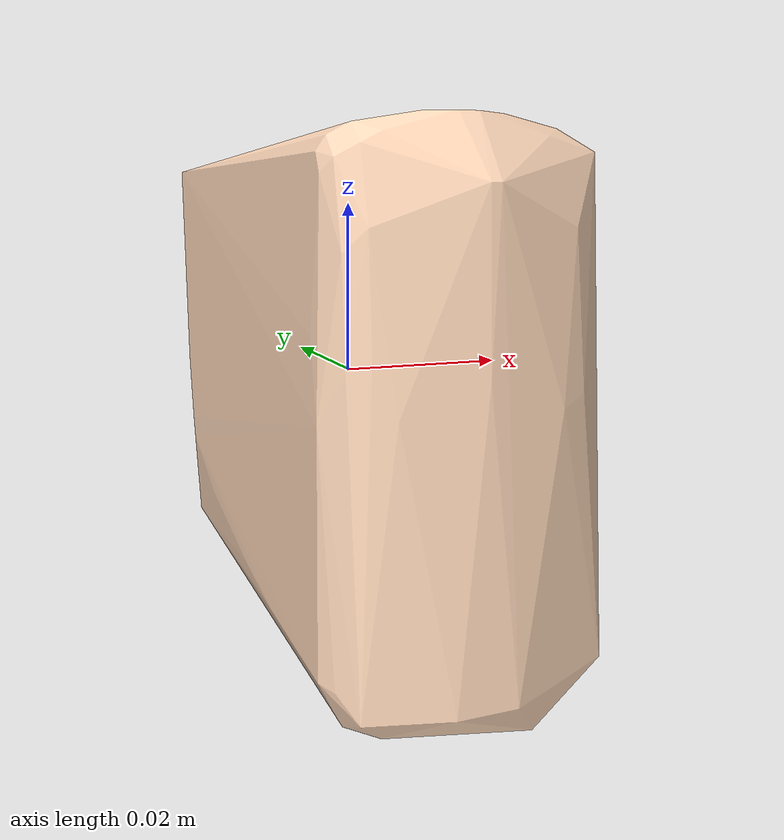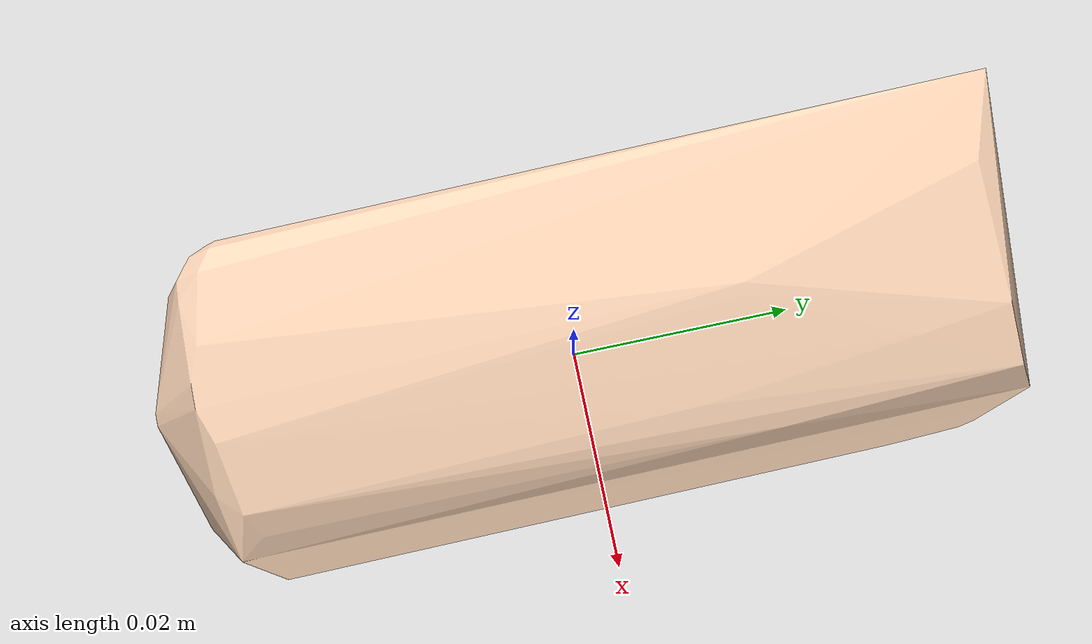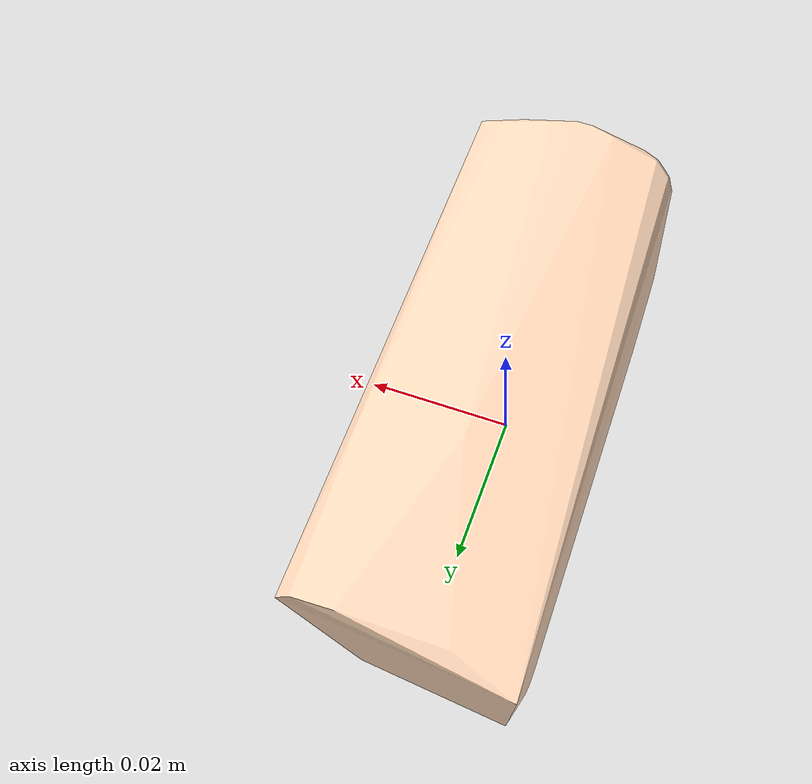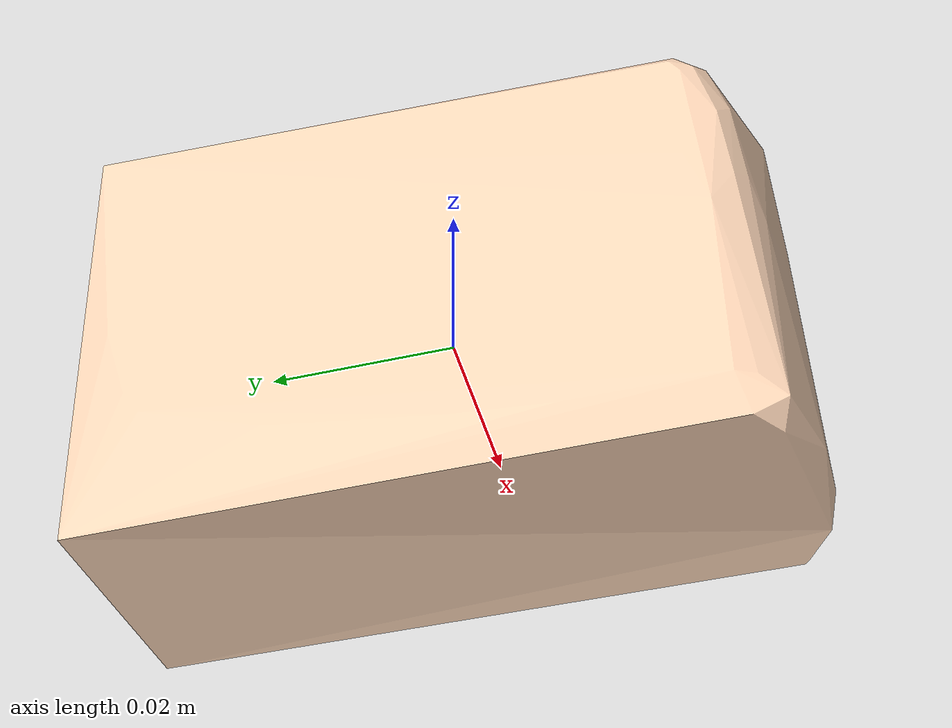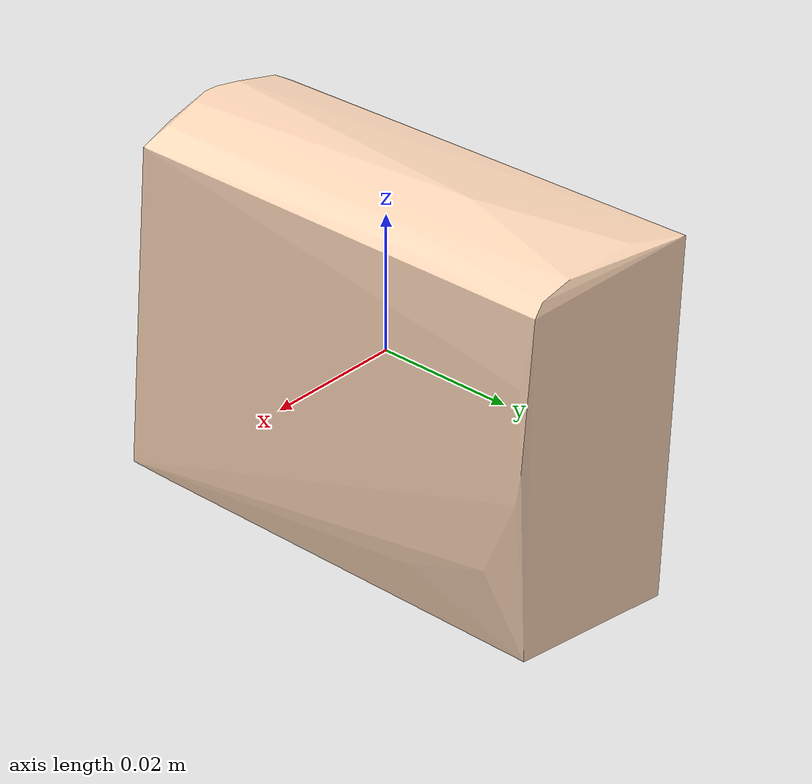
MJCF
<mujoco model="shapenetsem8">
  <asset>
    <mesh file="meshes/shapenetsem8/shapenetsem8_0.stl" name="shapenetsem8_0" scale="0.7 0.7 0.7"/>
    <texture file="../textures/texture8-1.png" type="2d" name="tex-sem8"/>
    <material name="sem8" reflectance="0.7" texrepeat="50 50" texture="tex-sem8" texuniform="true"/>
  </asset>
  <worldbody>
    <body>
      <body name="collision">
        <geom pos="0 0 0" mesh="shapenetsem8_0" type="mesh" solimp="0.998 0.998 0.001" solref="0.001 1" density="100" friction="0.95 0.3 0.1" rgba="1 0.85 0.73 1" group="1" condim="4"/>
      </body>
      <body name="visual">
        <geom pos="0 0 0" mesh="shapenetsem8_0" type="mesh" rgba="0 1 0 1" conaffinity="0" contype="0" group="0" mass="0.0001"/>
      </body>
      <site rgba="0 0 0 0" size="0.005" pos="0 0 -0.06" name="bottom_site"/>
      <site rgba="0 0 0 0" size="0.005" pos="0 0 0.04" name="top_site"/>
      <site rgba="0 0 0 0" size="0.005" pos="0.025 0.025 0" name="horizontal_radius_site"/>
    </body>
  </worldbody>
</mujoco>
